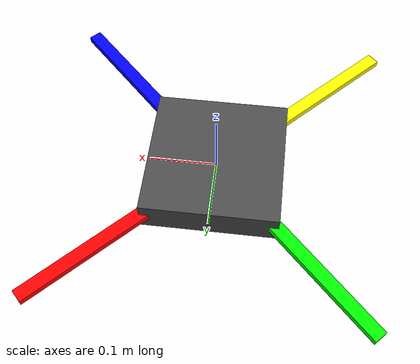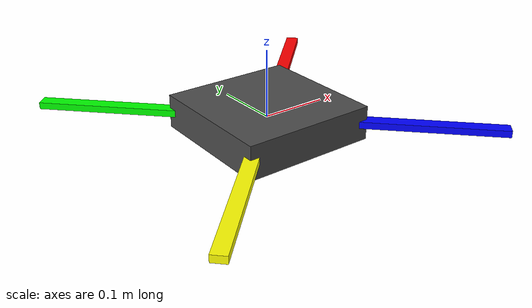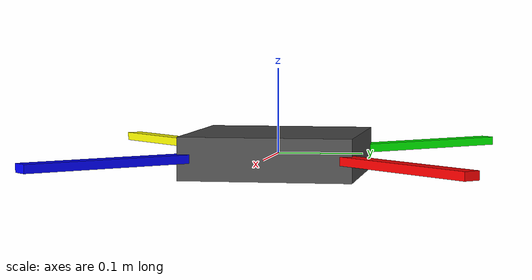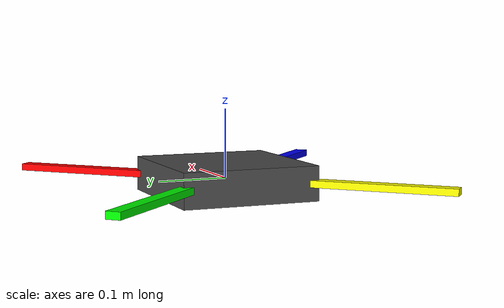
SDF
<?xml version="1.0" ?>
<sdf version="1.6">
  <model name="quadcopter">
    <link name="base_link">
      <inertial>
        <mass>1.0</mass>
        <inertia>
          <ixx>0.01</ixx>
          <ixy>0.0</ixy>
          <ixz>0.0</ixz>
          <iyy>0.01</iyy>
          <iyz>0.0</iyz>
          <izz>0.01</izz>
        </inertia>
      </inertial>
      <collision name="collision">
        <geometry>
          <box>
            <size>0.2 0.2 0.1</size>
          </box>
        </geometry>
      </collision>
      <visual name="visual">
        <geometry>
          <box>
            <size>0.2 0.2 0.05</size>
          </box>
        </geometry>
        <material>
          <ambient>0.2 0.2 0.2 1</ambient>
          <diffuse>0.3 0.3 0.3 1</diffuse>
          <specular>0.5 0.5 0.5 1</specular>
        </material>
      </visual>
      <!-- Arms -->
      <visual name="arm_front_left">
        <pose>0.15 0.15 0 0 0 0.785398</pose>
        <geometry>
          <box>
            <size>0.25 0.02 0.01</size>
          </box>
        </geometry>
        <material>
          <ambient>1 0 0 1</ambient>
          <diffuse>1 0 0 1</diffuse>
        </material>
      </visual>
      <visual name="arm_front_right">
        <pose>0.15 -0.15 0 0 0 -0.785398</pose>
        <geometry>
          <box>
            <size>0.25 0.02 0.01</size>
          </box>
        </geometry>
        <material>
          <ambient>0 0 1 1</ambient>
          <diffuse>0 0 1 1</diffuse>
        </material>
      </visual>
      <visual name="arm_rear_left">
        <pose>-0.15 0.15 0 0 0 -0.785398</pose>
        <geometry>
          <box>
            <size>0.25 0.02 0.01</size>
          </box>
        </geometry>
        <material>
          <ambient>0 1 0 1</ambient>
          <diffuse>0 1 0 1</diffuse>
        </material>
      </visual>
      <visual name="arm_rear_right">
        <pose>-0.15 -0.15 0 0 0 0.785398</pose>
        <geometry>
          <box>
            <size>0.25 0.02 0.01</size>
          </box>
        </geometry>
        <material>
          <ambient>1 1 0 1</ambient>
          <diffuse>1 1 0 1</diffuse>
        </material>
      </visual>
      <sensor name="imu_sensor" type="imu">
        <always_on>1</always_on>
        <update_rate>100</update_rate>
        <topic>/imu</topic>
        <plugin
          filename="gz-sim-imu-system"
          name="gz::sim::systems::Imu">
        </plugin>
      </sensor>
      <sensor name="magnetometer_sensor" type="magnetometer">
        <always_on>1</always_on>
        <update_rate>100</update_rate>
        <topic>/mag</topic>
        <magnetometer>
          <x>
            <noise type="gaussian">
              <mean>0.0</mean>
              <stddev>0.01</stddev>
            </noise>
          </x>
          <y>
            <noise type="gaussian">
              <mean>0.0</mean>
              <stddev>0.01</stddev>
            </noise>
          </y>
          <z>
            <noise type="gaussian">
              <mean>0.0</mean>
              <stddev>0.01</stddev>
            </noise>
          </z>
        </magnetometer>
        <plugin
          filename="gz-sim-magnetometer-system"
          name="gz::sim::systems::Magnetometer">
        </plugin>
      </sensor>
    </link>
  </model>
</sdf>
